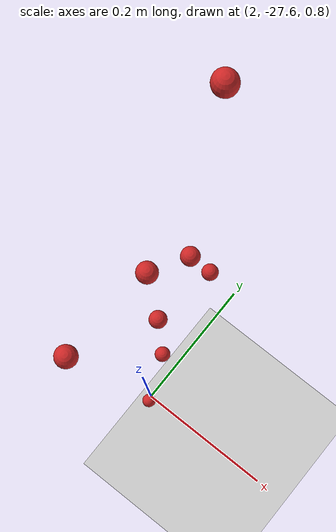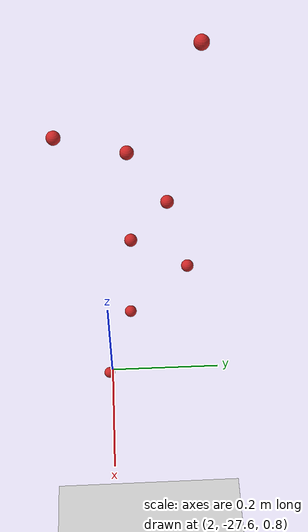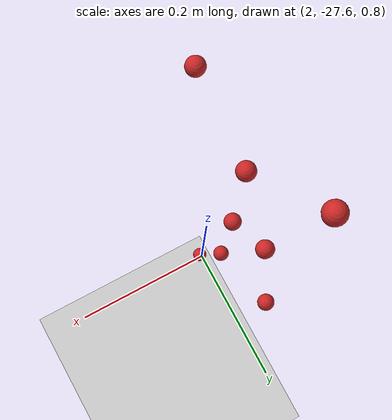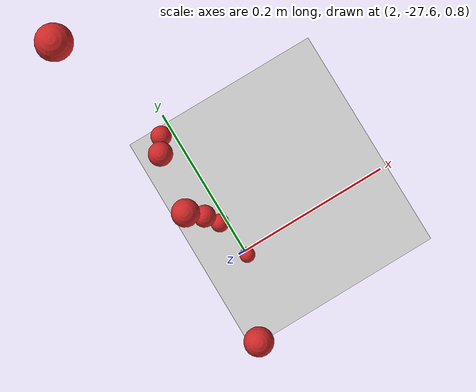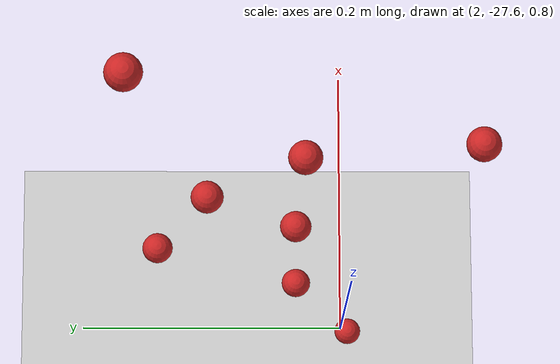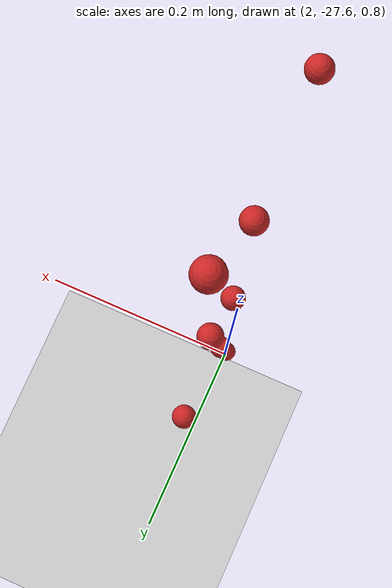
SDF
<sdf version="1.4">
 <world name="default">
  <model name="ground_plane">
   <static>1</static>
   <link name="link">
    <collision name="collision">
     <geometry><plane><normal>0 0 1</normal><size>100 100</size></plane></geometry>
     <surface><friction><ode><mu>100</mu><mu2>50</mu2></ode></friction></surface>
    </collision>
    <visual name="visual">
     <cast_shadows>0</cast_shadows>
     <geometry><plane><normal>0 0 1</normal><size>100 100</size></plane></geometry>
     <material>
      <script><uri>file://media/materials/scripts/gazebo.material</uri><name>Gazebo/Grey</name></script>
     </material>
    </visual>
    <velocity_decay><linear>0</linear><angular>0</angular></velocity_decay>
   </link>
  </model>
  <model name="apple529">
   <link name="my_apple">
    <inertial>
     <pose>2 0 0 0 -0 0</pose>
     <mass>1</mass>
     <inertia><ixx>1</ixx><ixy>0</ixy><ixz>0</ixz><iyy>1</iyy><iyz>0</iyz><izz>1</izz></inertia>
    </inertial>
    <collision name="my_apple_collision">
     <pose>2 0 1 0 -0 0</pose>
     <geometry><sphere><radius>0.01</radius></sphere></geometry>
    </collision>
    <visual name="my_apple_visual">
     <pose>2 0 1 0 -0 0</pose>
     <geometry><sphere><radius>0.01</radius></sphere></geometry>
     <material><script><name>Gazebo/Red</name><uri>__default__</uri></script></material>
    </visual>
    <gravity>0</gravity>
    <velocity_decay><linear>0</linear><angular>0</angular></velocity_decay>
   </link>
   <pose>0 -27.6555 0.416184 0 -0 0</pose>
   <static>0</static>
  </model>
  <model name="apple530">
   <link name="my_apple">
    <inertial>
     <pose>2 0 0 0 -0 0</pose>
     <mass>1</mass>
     <inertia><ixx>1</ixx><ixy>0</ixy><ixz>0</ixz><iyy>1</iyy><iyz>0</iyz><izz>1</izz></inertia>
    </inertial>
    <collision name="my_apple_collision">
     <pose>2 0 1 0 -0 0</pose>
     <geometry><sphere><radius>0.01</radius></sphere></geometry>
    </collision>
    <visual name="my_apple_visual">
     <pose>2 0 1 0 -0 0</pose>
     <geometry><sphere><radius>0.01</radius></sphere></geometry>
     <material><script><name>Gazebo/Red</name><uri>__default__</uri></script></material>
    </visual>
    <gravity>0</gravity>
    <velocity_decay><linear>0</linear><angular>0</angular></velocity_decay>
   </link>
   <pose>0 -27.6058 -0.210569 0 -0 0</pose>
   <static>0</static>
  </model>
  <model name="apple531">
   <link name="my_apple">
    <inertial>
     <pose>2 0 0 0 -0 0</pose>
     <mass>1</mass>
     <inertia><ixx>1</ixx><ixy>0</ixy><ixz>0</ixz><iyy>1</iyy><iyz>0</iyz><izz>1</izz></inertia>
    </inertial>
    <collision name="my_apple_collision">
     <pose>2 0 1 0 -0 0</pose>
     <geometry><sphere><radius>0.01</radius></sphere></geometry>
    </collision>
    <visual name="my_apple_visual">
     <pose>2 0 1 0 -0 0</pose>
     <geometry><sphere><radius>0.01</radius></sphere></geometry>
     <material><script><name>Gazebo/Red</name><uri>__default__</uri></script></material>
    </visual>
    <gravity>0</gravity>
    <velocity_decay><linear>0</linear><angular>0</angular></velocity_decay>
   </link>
   <pose>0 -27.5559 0.190186 0 -0 0</pose>
   <static>0</static>
  </model>
  <model name="apple532">
   <link name="my_apple">
    <inertial>
     <pose>2 0 0 0 -0 0</pose>
     <mass>1</mass>
     <inertia><ixx>1</ixx><ixy>0</ixy><ixz>0</ixz><iyy>1</iyy><iyz>0</iyz><izz>1</izz></inertia>
    </inertial>
    <collision name="my_apple_collision">
     <pose>2 0 1 0 -0 0</pose>
     <geometry><sphere><radius>0.01</radius></sphere></geometry>
    </collision>
    <visual name="my_apple_visual">
     <pose>2 0 1 0 -0 0</pose>
     <geometry><sphere><radius>0.01</radius></sphere></geometry>
     <material><script><name>Gazebo/Red</name><uri>__default__</uri></script></material>
    </visual>
    <gravity>0</gravity>
    <velocity_decay><linear>0</linear><angular>0</angular></velocity_decay>
   </link>
   <pose>0 -27.5 0.277621 0 -0 0</pose>
   <static>0</static>
  </model>
  <model name="apple533">
   <link name="my_apple">
    <inertial>
     <pose>2 0 0 0 -0 0</pose>
     <mass>1</mass>
     <inertia><ixx>1</ixx><ixy>0</ixy><ixz>0</ixz><iyy>1</iyy><iyz>0</iyz><izz>1</izz></inertia>
    </inertial>
    <collision name="my_apple_collision">
     <pose>2 0 1 0 -0 0</pose>
     <geometry><sphere><radius>0.01</radius></sphere></geometry>
    </collision>
    <visual name="my_apple_visual">
     <pose>2 0 1 0 -0 0</pose>
     <geometry><sphere><radius>0.01</radius></sphere></geometry>
     <material><script><name>Gazebo/Red</name><uri>__default__</uri></script></material>
    </visual>
    <gravity>0</gravity>
    <velocity_decay><linear>0</linear><angular>0</angular></velocity_decay>
   </link>
   <pose>0 -27.4659 0.119288 0 -0 0</pose>
   <static>0</static>
  </model>
  <model name="apple534">
   <link name="my_apple">
    <inertial>
     <pose>2 0 0 0 -0 0</pose>
     <mass>1</mass>
     <inertia><ixx>1</ixx><ixy>0</ixy><ixz>0</ixz><iyy>1</iyy><iyz>0</iyz><izz>1</izz></inertia>
    </inertial>
    <collision name="my_apple_collision">
     <pose>2 0 1 0 -0 0</pose>
     <geometry><sphere><radius>0.01</radius></sphere></geometry>
    </collision>
    <visual name="my_apple_visual">
     <pose>2 0 1 0 -0 0</pose>
     <geometry><sphere><radius>0.01</radius></sphere></geometry>
     <material><script><name>Gazebo/Red</name><uri>__default__</uri></script></material>
    </visual>
    <gravity>0</gravity>
    <velocity_decay><linear>0</linear><angular>0</angular></velocity_decay>
   </link>
   <pose>0 -27.46 0.570138 0 -0 0</pose>
   <static>0</static>
  </model>
  <model name="apple535">
   <link name="my_apple">
    <inertial>
     <pose>2 0 0 0 -0 0</pose>
     <mass>1</mass>
     <inertia><ixx>1</ixx><ixy>0</ixy><ixz>0</ixz><iyy>1</iyy><iyz>0</iyz><izz>1</izz></inertia>
    </inertial>
    <collision name="my_apple_collision">
     <pose>2 0 1 0 -0 0</pose>
     <geometry><sphere><radius>0.01</radius></sphere></geometry>
    </collision>
    <visual name="my_apple_visual">
     <pose>2 0 1 0 -0 0</pose>
     <geometry><sphere><radius>0.01</radius></sphere></geometry>
     <material><script><name>Gazebo/Red</name><uri>__default__</uri></script></material>
    </visual>
    <gravity>0</gravity>
    <velocity_decay><linear>0</linear><angular>0</angular></velocity_decay>
   </link>
   <pose>0 -27.5607 -0.005546 0 -0 0</pose>
   <static>0</static>
  </model>
  <model name="apple543">
   <link name="my_apple">
    <inertial>
     <pose>2 0 0 0 -0 0</pose>
     <mass>1</mass>
     <inertia><ixx>1</ixx><ixy>0</ixy><ixz>0</ixz><iyy>1</iyy><iyz>0</iyz><izz>1</izz></inertia>
    </inertial>
    <collision name="my_apple_collision">
     <pose>2 0 1 0 -0 0</pose>
     <geometry><sphere><radius>0.01</radius></sphere></geometry>
    </collision>
    <visual name="my_apple_visual">
     <pose>2 0 1 0 -0 0</pose>
     <geometry><sphere><radius>0.01</radius></sphere></geometry>
     <material><script><name>Gazebo/Red</name><uri>__default__</uri></script></material>
    </visual>
    <gravity>0</gravity>
    <velocity_decay><linear>0</linear><angular>0</angular></velocity_decay>
   </link>
   <pose>0 -27.5569 0.383207 0 -0 0</pose>
   <static>0</static>
  </model>
 </world>
</sdf>
